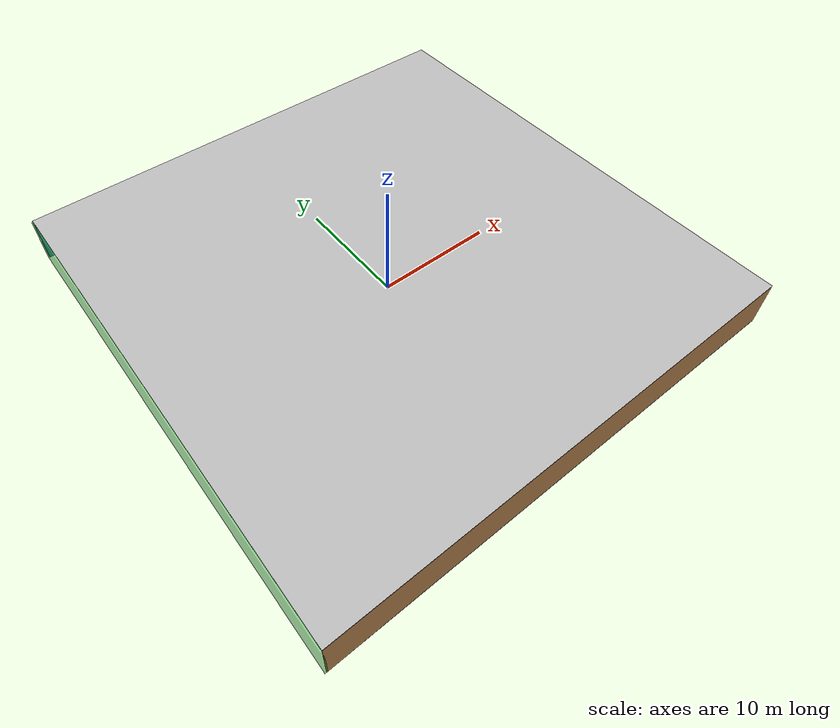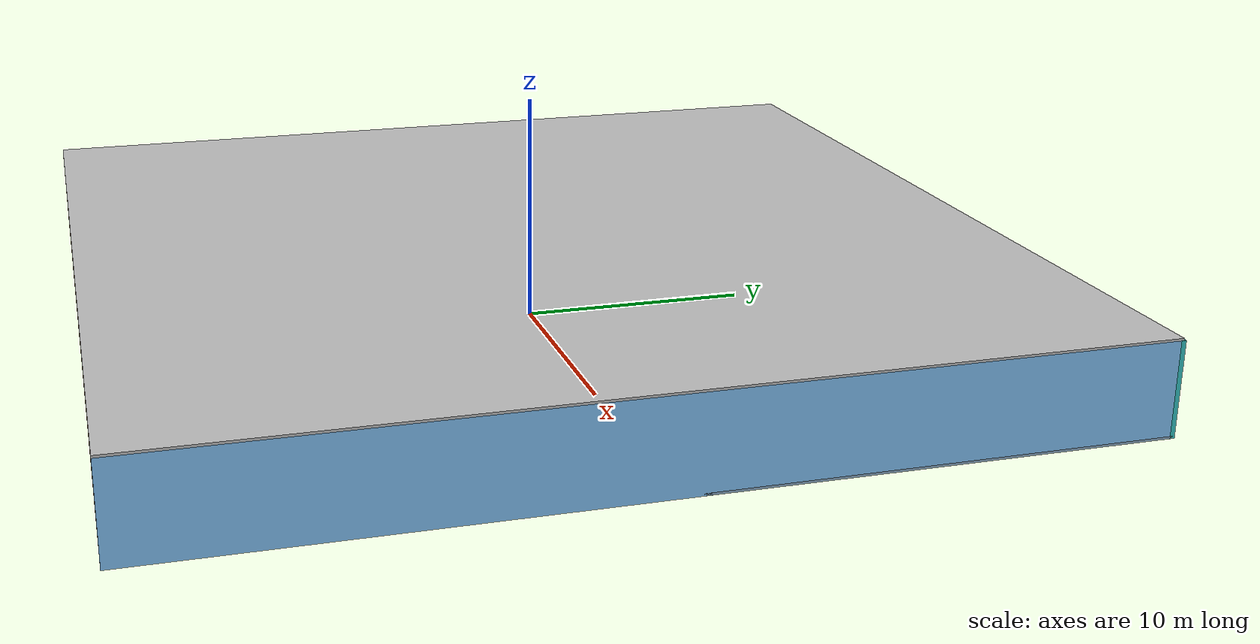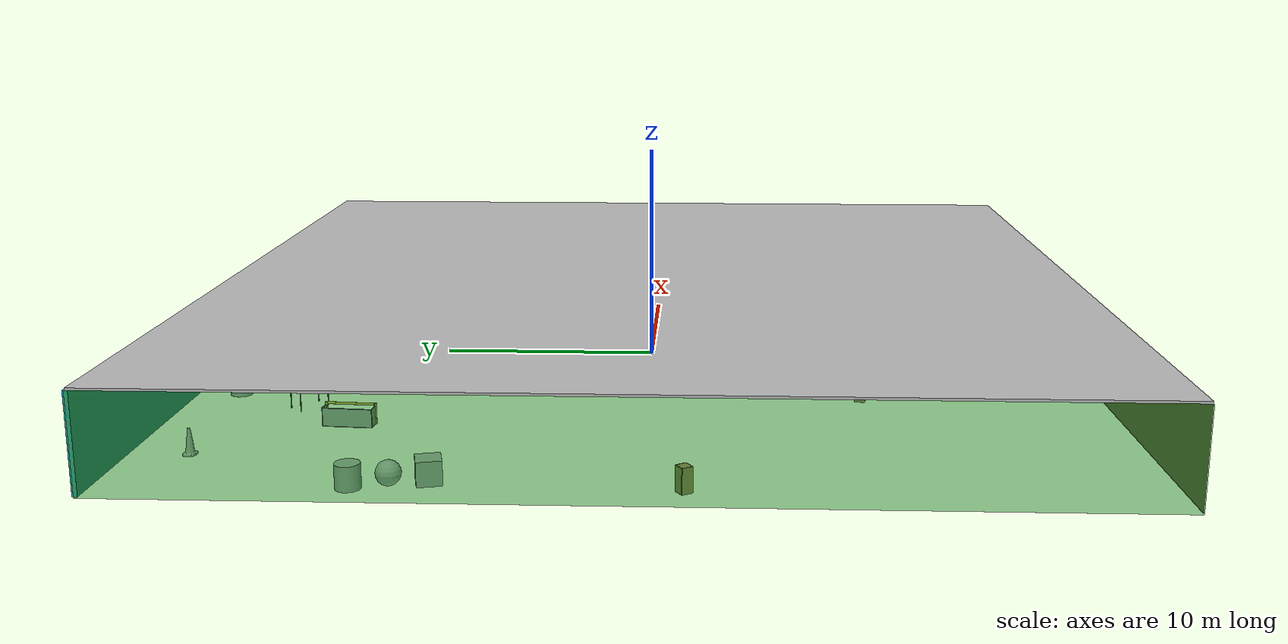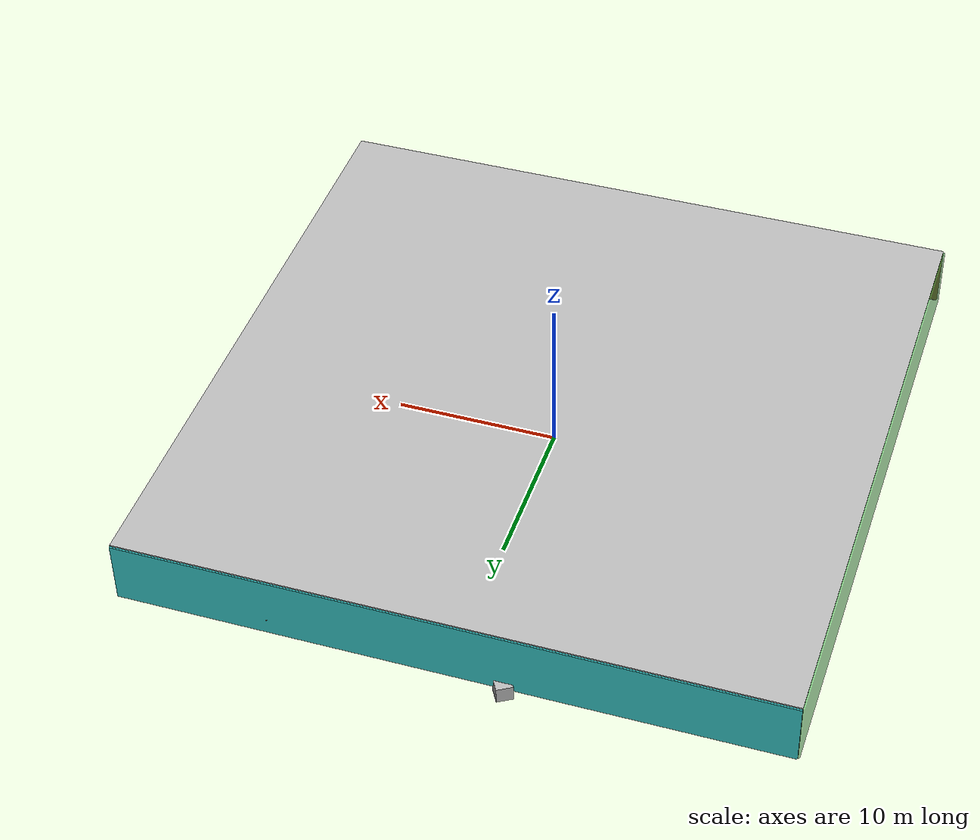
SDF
<sdf version="1.4">
 <world name="default">
  <physics type="ode">
   <max_step_size>0.001</max_step_size>
   <real_time_factor>1</real_time_factor>
   <real_time_update_rate>1000</real_time_update_rate>
   <gravity>0 0 -9.8</gravity>
  </physics>
  <scene><ambient>0.4 0.4 0.4 1</ambient><background>0.7 0.7 0.7 1</background><shadows>1</shadows></scene>
  <model name="Surrounding">
   <static>1</static>
   <link name="Ceiling">
    <collision name="Ceiling_Collision"><geometry><box><size>40 40 0.1</size></box></geometry></collision>
    <visual name="Ceiling_Visual">
     <geometry><box><size>40 40 0.1</size></box></geometry>
     <material>
      <script><uri>file://media/materials/scripts/gazebo.material</uri><name>Gazebo/PioneerBody</name></script>
     </material>
    </visual>
    <pose>0 0 4.05 0 0 0</pose>
   </link>
   <link name="Wall_South">
    <collision name="Wall_South_Collision">
     <geometry><box><size>40 0 4</size></box></geometry>
     <pose>0 0 2 0 -0 0</pose>
    </collision>
    <visual name="Wall_South_Visual">
     <pose>0 0 2 0 -0 0</pose>
     <geometry><box><size>40 0 4</size></box></geometry>
     <material>
      <script><uri>file://media/materials/scripts/gazebo.material</uri><name>Gazebo/WoodFloor</name></script>
     </material>
    </visual>
    <velocity_decay><linear>0</linear><angular>0</angular></velocity_decay>
    <pose>0 -20 0 0 -0 0</pose>
   </link>
   <link name="Wall_East">
    <collision name="Wall_21_Collision">
     <geometry><box><size>40 0 4</size></box></geometry>
     <pose>0 0 2 0 -0 0</pose>
    </collision>
    <visual name="Wall_21_Visual">
     <pose>0 0 2 0 -0 0</pose>
     <geometry><box><size>40 0 4</size></box></geometry>
     <material>
      <script><uri>file://media/materials/scripts/gazebo.material</uri><name>Gazebo/SkyBlue</name></script>
     </material>
    </visual>
    <velocity_decay><linear>0</linear><angular>0</angular></velocity_decay>
    <pose>20 0 0 0 -0 1.5708</pose>
   </link>
   <link name="Wall_North">
    <collision name="Wall_22_Collision">
     <geometry><box><size>40 0.2 4</size></box></geometry>
     <pose>0 0 2 0 -0 0</pose>
    </collision>
    <visual name="Wall_22_Visual">
     <pose>0 0 2 0 -0 0</pose>
     <geometry><box><size>40 0.2 4</size></box></geometry>
     <material>
      <script><uri>file://media/materials/scripts/gazebo.material</uri><name>Gazebo/Turquoise</name></script>
     </material>
    </visual>
    <velocity_decay><linear>0</linear><angular>0</angular></velocity_decay>
    <pose>0 20 0 0 -0 0</pose>
   </link>
   <link name="Wall_West">
    <collision name="Wall_23_Collision">
     <geometry><box><size>40 0.2 4</size></box></geometry>
     <pose>0 0 2 0 -0 0</pose>
    </collision>
    <visual name="Wall_23_Visual">
     <pose>0 0 2 0 -0 0</pose>
     <geometry><box><size>40 0.2 4</size></box></geometry>
     <material>
      <script><uri>file://media/materials/scripts/gazebo.material</uri><name>Gazebo/GreenTransparent</name></script>
     </material>
    </visual>
    <velocity_decay><linear>0</linear><angular>0</angular></velocity_decay>
    <pose>-20 0 0 0 0 -1.5708</pose>
   </link>
   <link name="Ground_link">
    <collision name="collision">
     <pose>0 0 .05 0 -0 0</pose>
     <geometry><box><size>40 40 0.1</size></box></geometry>
    </collision>
    <visual name="visual">
     <pose>0 0 .05 0 -0 0</pose>
     <geometry><box><size>40 40 0.1</size></box></geometry>
     <material>
      <script><uri>file://media/materials/scripts/gazebo.material</uri><name>Gazebo/GreyTransparent</name></script>
     </material>
    </visual>
   </link>
   <static>1</static>
  </model>
  <spherical_coordinates>
   <surface_model>EARTH_WGS84</surface_model>
   <latitude_deg>0</latitude_deg>
   <longitude_deg>0</longitude_deg>
   <elevation>0</elevation>
   <heading_deg>0</heading_deg>
  </spherical_coordinates>
  <light name="lightball_0" type="diffuse">
   <diffuse>0.8 0.8 0.8 1</diffuse>
   <specular>0.2 0.2 0.2 1</specular>
   <attenuation>
    <range>100</range>
    <constant>0.7</constant>
    <linear>0.01</linear>
    <quadratic>0.001</quadratic>
   </attenuation>
   <direction>-0.5 0.1 -0.9</direction>
   <pose>11.8497754501 10.9692036755 3.67579499752 0 0 0</pose>
  </light>
  <light name="lightball_1" type="diffuse">
   <diffuse>0.8 0.8 0.8 1</diffuse>
   <specular>0.2 0.2 0.2 1</specular>
   <attenuation>
    <range>100</range>
    <constant>0.7</constant>
    <linear>0.01</linear>
    <quadratic>0.001</quadratic>
   </attenuation>
   <direction>-0.5 0.1 -0.9</direction>
   <pose>-15.6833429527 -17.8022334767 1.38664090798 0 0 0</pose>
  </light>
  <light name="lightball_2" type="diffuse">
   <diffuse>0.8 0.8 0.8 1</diffuse>
   <specular>0.2 0.2 0.2 1</specular>
   <attenuation>
    <range>100</range>
    <constant>0.7</constant>
    <linear>0.01</linear>
    <quadratic>0.001</quadratic>
   </attenuation>
   <direction>-0.5 0.1 -0.9</direction>
   <pose>-4.82688349056 -6.77895929182 2.52652445977 0 0 0</pose>
  </light>
  <light name="lightball_3" type="diffuse">
   <diffuse>0.8 0.8 0.8 1</diffuse>
   <specular>0.2 0.2 0.2 1</specular>
   <attenuation>
    <range>100</range>
    <constant>0.7</constant>
    <linear>0.01</linear>
    <quadratic>0.001</quadratic>
   </attenuation>
   <direction>-0.5 0.1 -0.9</direction>
   <pose>3.18787112667 -13.4433692987 3.51062201771 0 0 0</pose>
  </light>
  <light name="lightball_4" type="diffuse">
   <diffuse>0.8 0.8 0.8 1</diffuse>
   <specular>0.2 0.2 0.2 1</specular>
   <attenuation>
    <range>100</range>
    <constant>0.7</constant>
    <linear>0.01</linear>
    <quadratic>0.001</quadratic>
   </attenuation>
   <direction>-0.5 0.1 -0.9</direction>
   <pose>-11.9630837625 -5.84949880833 2.82651709471 0 0 0</pose>
  </light>
  <light name="lightball_5" type="diffuse">
   <diffuse>0.8 0.8 0.8 1</diffuse>
   <specular>0.2 0.2 0.2 1</specular>
   <attenuation>
    <range>100</range>
    <constant>0.7</constant>
    <linear>0.01</linear>
    <quadratic>0.001</quadratic>
   </attenuation>
   <direction>-0.5 0.1 -0.9</direction>
   <pose>-15.4700495037 -0.0388465858255 2.86989349063 0 0 0</pose>
  </light>
  <light name="lightball_6" type="diffuse">
   <diffuse>0.8 0.8 0.8 1</diffuse>
   <specular>0.2 0.2 0.2 1</specular>
   <attenuation>
    <range>100</range>
    <constant>0.7</constant>
    <linear>0.01</linear>
    <quadratic>0.001</quadratic>
   </attenuation>
   <direction>-0.5 0.1 -0.9</direction>
   <pose>11.3473041042 -16.1481877358 2.86717240141 0 0 0</pose>
  </light>
  <light name="lightball_7" type="diffuse">
   <diffuse>0.8 0.8 0.8 1</diffuse>
   <specular>0.2 0.2 0.2 1</specular>
   <attenuation>
    <range>100</range>
    <constant>0.7</constant>
    <linear>0.01</linear>
    <quadratic>0.001</quadratic>
   </attenuation>
   <direction>-0.5 0.1 -0.9</direction>
   <pose>15.0304384557 -6.47443560863 0.650915017196 0 0 0</pose>
  </light>
  <light name="lightball_8" type="diffuse">
   <diffuse>0.8 0.8 0.8 1</diffuse>
   <specular>0.2 0.2 0.2 1</specular>
   <attenuation>
    <range>100</range>
    <constant>0.7</constant>
    <linear>0.01</linear>
    <quadratic>0.001</quadratic>
   </attenuation>
   <direction>-0.5 0.1 -0.9</direction>
   <pose>10.81821549 11.2107939609 2.04333825096 0 0 0</pose>
  </light>
  <light name="lightball_9" type="diffuse">
   <diffuse>0.8 0.8 0.8 1</diffuse>
   <specular>0.2 0.2 0.2 1</specular>
   <attenuation>
    <range>100</range>
    <constant>0.7</constant>
    <linear>0.01</linear>
    <quadratic>0.001</quadratic>
   </attenuation>
   <direction>-0.5 0.1 -0.9</direction>
   <pose>-19.8957104406 5.22988693846 3.04377079907 0 0 0</pose>
  </light>
  <light name="lightball_10" type="diffuse">
   <diffuse>0.8 0.8 0.8 1</diffuse>
   <specular>0.2 0.2 0.2 1</specular>
   <attenuation>
    <range>100</range>
    <constant>0.7</constant>
    <linear>0.01</linear>
    <quadratic>0.001</quadratic>
   </attenuation>
   <direction>-0.5 0.1 -0.9</direction>
   <pose>18.8923037826 -15.6763563167 3.26283269684 0 0 0</pose>
  </light>
  <light name="lightball_11" type="diffuse">
   <diffuse>0.8 0.8 0.8 1</diffuse>
   <specular>0.2 0.2 0.2 1</specular>
   <attenuation>
    <range>100</range>
    <constant>0.7</constant>
    <linear>0.01</linear>
    <quadratic>0.001</quadratic>
   </attenuation>
   <direction>-0.5 0.1 -0.9</direction>
   <pose>5.98792995643 15.5101842896 1.00149282089 0 0 0</pose>
  </light>
  <light name="lightball_12" type="diffuse">
   <diffuse>0.8 0.8 0.8 1</diffuse>
   <specular>0.2 0.2 0.2 1</specular>
   <attenuation>
    <range>100</range>
    <constant>0.7</constant>
    <linear>0.01</linear>
    <quadratic>0.001</quadratic>
   </attenuation>
   <direction>-0.5 0.1 -0.9</direction>
   <pose>-3.85119992642 -9.81891148958 1.55426278476 0 0 0</pose>
  </light>
  <light name="lightball_13" type="diffuse">
   <diffuse>0.8 0.8 0.8 1</diffuse>
   <specular>0.2 0.2 0.2 1</specular>
   <attenuation>
    <range>100</range>
    <constant>0.7</constant>
    <linear>0.01</linear>
    <quadratic>0.001</quadratic>
   </attenuation>
   <direction>-0.5 0.1 -0.9</direction>
   <pose>8.4120242625 -4.61116446511 1.49657942458 0 0 0</pose>
  </light>
  <include><uri>model://cabinet</uri><pose>-18.6449704236 -1.87612259292 0 0 0 2.10841730458</pose></include>
  <include>
   <uri>model://textured_shapes</uri>
   <pose>-17.0730686026 9.29466004164 0 0 0 0.238345341786</pose>
  </include>
  <include>
   <uri>model://construction_cone</uri>
   <pose>-15.3718254357 17.4546140171 0 0 0 3.0683255496</pose>
  </include>
  <include>
   <uri>model://robocup_3Dsim_goal</uri>
   <pose>-11.288151707 12.115120764 0 0 0 3.06120026691</pose>
  </include>
  <include><uri>model://cabinet</uri><pose>-7.38429592144 -9.40778727144 0 0 0 1.36897897459</pose></include>
  <include><uri>model://table</uri><pose>-9.15715336402 14.4549877306 0 0 0 2.40167954093</pose></include>
  <include>
   <uri>model://textured_shapes</uri>
   <pose>-4.58496712415 19.2894342574 0 0 0 2.10668290803</pose>
  </include>
  <include><uri>model://cabinet</uri><pose>-2.55723589992 -16.9399289192 0 0 0 0.806372863794</pose></include>
  <include><uri>model://cabinet</uri><pose>-1.63974559405 2.50829826033 0 0 0 3.04965748999</pose></include>
  <include>
   <uri>model://construction_cone</uri>
   <pose>1.50046164273 -14.2603666164 0 0 0 2.94817972798</pose>
  </include>
  <include><uri>model://table</uri><pose>-0.613244237692 4.02955463173 0 0 0 1.22652769496</pose></include>
  <include><uri>model://cabinet</uri><pose>0.0413252133486 10.6020001848 0 0 0 2.43805677988</pose></include>
  <include><uri>model://table</uri><pose>3.37329829443 18.4530188223 0 0 0 0.189311250323</pose></include>
  <include><uri>model://cabinet</uri><pose>5.82653116513 -8.43921638471 0 0 0 1.85682609649</pose></include>
  <include><uri>model://cabinet</uri><pose>9.43226875434 4.45177620699 0 0 0 1.69087882363</pose></include>
  <include><uri>model://cabinet</uri><pose>8.57633794396 15.662903461 0 0 0 2.57182240115</pose></include>
  <include><uri>model://table</uri><pose>10.3067455054 19.3919529167 0 0 0 0.570312980403</pose></include>
  <include><uri>model://cabinet</uri><pose>15.9467229142 3.0115680491 0 0 0 1.18782083674</pose></include>
  <include><uri>model://cabinet</uri><pose>17.640594387 -18.1015986031 0 0 0 2.13054154437</pose></include>
  <include>
   <uri>model://robocup_3Dsim_goal</uri>
   <pose>18.4781913998 -11.9831761557 0 0 0 0.234476985634</pose>
  </include>
 </world>
</sdf>

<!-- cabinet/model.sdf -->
<sdf version="1.5">
  <model name="cabinet">
    <static>true</static>
    <link name="cabinet_bottom_plate">
      <inertial>
        <pose>0 0 -1 0 0 0</pose>
        <inertia>
          <ixx>2.050000</ixx>
          <ixy>0</ixy>
          <ixz>0</ixz>
          <iyy>2.050000</iyy>
          <iyz>0</iyz>
          <izz>2.050000</izz>
        </inertia>
        <mass>25.000000</mass>
      </inertial>
      <collision name="cabinet_bottom_plate_geom">
        <pose>0 0 0.010000 0 0 0</pose>
        <geometry>
          <box>
            <size>0.450000 0.450000 0.020000</size>
          </box>
        </geometry>
      </collision>
      <visual name="cabinet_bottom_plate_geom_visual">
        <pose>0 0 0.010000 0 0 0</pose>
        <geometry>
          <box>
            <size>0.450000 0.450000 0.020000</size>
          </box>
        </geometry>
        <material>
          <script>
            <uri>model://media/materials/scripts/gazebo.material</uri>
            <name>Gazebo/Wood</name>
          </script>
        </material>
      </visual>
      <collision name="cabinet_bottom_plate_geom_cabinet_back_plate">
        <pose>0.235000 0 0.510000 0 0 0</pose>
        <geometry>
          <box>
            <size>0.020000 0.450000 1.020000</size>
          </box>
        </geometry>
      </collision>
      <visual name="cabinet_bottom_plate_geom_cabinet_back_plate_visual">
        <pose>0.235000 0 0.510000 0 0 0</pose>
        <geometry>
          <box>
            <size>0.020000 0.450000 1.020000</size>
          </box>
        </geometry>
        <material>
          <script>
            <uri>model://media/materials/scripts/gazebo.material</uri>
            <name>Gazebo/Wood</name>
          </script>
        </material>
      </visual>
      <collision name="cabinet_bottom_plate_geom_cabinet_left_plate">
        <pose>0 0.235000 0.510000 0 0 0</pose>
        <geometry>
          <box>
            <size>0.450000 0.020000 1.020000</size>
          </box>
        </geometry>
      </collision>
      <visual name="cabinet_bottom_plate_geom_cabinet_left_plate_visual">
        <pose>0 0.235000 0.510000 0 0 0</pose>
        <geometry>
          <box>
            <size>0.450000 0.020000 1.020000</size>
          </box>
        </geometry>
        <material>
          <script>
            <uri>model://media/materials/scripts/gazebo.material</uri>
            <name>Gazebo/Wood</name>
          </script>
        </material>
      </visual>
      <collision name="cabinet_bottom_plate_geom_cabinet_middle_plate">
        <pose>0 0 0.510000 0 0 0</pose>
        <geometry>
          <box>
            <size>0.450000 0.450000 0.020000</size>
          </box>
        </geometry>
      </collision>
      <visual name="cabinet_bottom_plate_geom_cabinet_middle_plate_visual">
        <pose>0 0 0.510000 0 0 0</pose>
        <geometry>
          <box>
            <size>0.450000 0.450000 0.020000</size>
          </box>
        </geometry>
        <material>
          <script>
            <uri>model://media/materials/scripts/gazebo.material</uri>
            <name>Gazebo/Wood</name>
          </script>
        </material>
      </visual>
      <collision name="cabinet_bottom_plate_geom_cabinet_right_plate">
        <pose>0 -0.235000 0.510000 0 0 0</pose>
        <geometry>
          <box>
            <size>0.450000 0.020000 1.020000</size>
          </box>
        </geometry>
      </collision>
      <visual name="cabinet_bottom_plate_geom_cabinet_right_plate_visual">
        <pose>0 -0.235000 0.510000 0 0 0</pose>
        <geometry>
          <box>
            <size>0.450000 0.020000 1.020000</size>
          </box>
        </geometry>
        <material>
          <script>
            <uri>model://media/materials/scripts/gazebo.material</uri>
            <name>Gazebo/Wood</name>
          </script>
        </material>
      </visual>
      <collision name="cabinet_bottom_plate_geom_cabinet_top_plate">
        <pose>0 0 1.010000 0 0 0</pose>
        <geometry>
          <box>
            <size>0.450000 0.450000 0.020000</size>
          </box>
        </geometry>
      </collision>
      <visual name="cabinet_bottom_plate_geom_cabinet_top_plate_visual">
        <pose>0 0 1.010000 0 0 0</pose>
        <geometry>
          <box>
            <size>0.450000 0.450000 0.020000</size>
          </box>
        </geometry>
        <material>
          <script>
            <uri>model://media/materials/scripts/gazebo.material</uri>
            <name>Gazebo/Wood</name>
          </script>
        </material>
      </visual>
    </link>
  </model>
</sdf>

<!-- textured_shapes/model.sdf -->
<sdf version="1.6">
  <model name="textured_shapes">
    <pose>0 0 0.5 0 0 0</pose>
    <link name="box">
      <pose>0 -1.5 0 0 0 0</pose>
      <collision name="collision">
        <geometry>
          <box>
            <size>1 1 1</size>
          </box>
        </geometry>
      </collision>
      <visual name="visual">
        <geometry>
          <box>
            <size>1 1 1</size>
          </box>
        </geometry>
        <material>
          <script>
            <uri>model://../model_source/models/textured_shapes/materials/scripts</uri>
            <uri>model://../model_source/models/textured_shapes/materials/textures</uri>
            <name>TexturedShape/Squares</name>
          </script>
        </material>
      </visual>
    </link>
    <link name="sphere">
      <collision name="collision">
        <geometry>
          <sphere>
            <radius>0.5</radius>
          </sphere>
        </geometry>
      </collision>
      <visual name="visual">
        <geometry>
          <sphere>
            <radius>0.5</radius>
          </sphere>
        </geometry>
        <material>
          <script>
            <uri>model://../model_source/models/textured_shapes/materials/scripts</uri>
            <uri>model://../model_source/models/textured_shapes/materials/textures</uri>
            <name>TexturedShape/Squares</name>
          </script>
        </material>
      </visual>
    </link>
    <link name="cylinder">
      <pose>0 1.5 0 0 0 0</pose>
      <collision name="collision">
        <geometry>
          <cylinder>
            <radius>0.5</radius>
            <length>1</length>
          </cylinder>
        </geometry>
      </collision>
      <visual name="visual">
        <geometry>
          <cylinder>
            <radius>0.5</radius>
            <length>1</length>
          </cylinder>
        </geometry>
        <material>
          <script>
            <uri>model://../model_source/models/textured_shapes/materials/scripts</uri>
            <uri>model://../model_source/models/textured_shapes/materials/textures</uri>
            <name>TexturedShape/Squares</name>
          </script>
        </material>
      </visual>
    </link>
  </model>
</sdf>

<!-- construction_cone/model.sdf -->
<sdf version="1.5">
  <model name="Construction Cone">
    <link name="link">
      <collision name="collision">
        <geometry>
          <mesh>
            <scale>10 10 10</scale>
            <uri>file://isr-testbed/construction_cone/meshes/construction_cone.dae</uri>
          </mesh>
        </geometry>
      </collision>
      <visual name="visual">
        <geometry>
          <mesh>
            <scale>10 10 10</scale>
            <uri>file://isr-testbed/construction_cone/meshes/construction_cone.dae</uri>
          </mesh>
        </geometry>
      </visual>
    </link>
  </model>
</sdf>

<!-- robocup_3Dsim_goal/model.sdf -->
<sdf version="1.5">
  <model name="robocup_3d_goal">
    <static>true</static>
    <link name="left_post">
      <pose>0 1.05 0.45 0 0 0</pose>
      <collision name="collision">
        <geometry>
          <cylinder>
            <radius>0.05</radius>
            <length>0.9</length>
          </cylinder>
        </geometry>
      </collision>
      <visual name="visual">
        <geometry>
          <cylinder>
            <radius>0.05</radius>
            <length>0.9</length>
          </cylinder>
        </geometry>
        <material>
          <script>
            <uri>file://media/materials/scripts/gazebo.material</uri>
            <name>Gazebo/ZincYellow</name>
          </script>
        </material>
      </visual>
    </link>
    <link name="left_support_horiz_lower">
      <pose>0.30 1.05 0.01 0 0 0</pose>
      <collision name="collision">
        <geometry>
          <box>
            <size>0.50 0.02 0.02</size>
          </box>
        </geometry>
      </collision>
      <visual name="visual">
        <geometry>
          <box>
            <size>0.50 0.02 0.02</size>
          </box>
        </geometry>
        <material>
          <script>
            <uri>file://media/materials/scripts/gazebo.material</uri>
            <name>Gazebo/White</name>
          </script>
        </material>
      </visual>
    </link>
    <link name="left_support_horiz_upper">
      <pose>0.30 1.05 0.79 0 0 0</pose>
      <collision name="collision">
        <geometry>
          <box>
            <size>0.50 0.02 0.02</size>
          </box>
        </geometry>
      </collision>
      <visual name="visual">
        <geometry>
          <box>
            <size>0.50 0.02 0.02</size>
          </box>
        </geometry>
        <material>
          <script>
            <uri>file://media/materials/scripts/gazebo.material</uri>
            <name>Gazebo/White</name>
          </script>
        </material>
      </visual>
    </link>
    <link name="left_support_vertical">
      <pose>0.56 1.05 0.4 0 1.5708 0</pose>
      <collision name="collision">
        <geometry>
          <box>
            <size>0.80 0.02 0.02</size>
          </box>
        </geometry>
      </collision>
      <visual name="visual">
        <geometry>
          <box>
            <size>0.80 0.02 0.02</size>
          </box>
        </geometry>
        <material>
          <script>
            <uri>file://media/materials/scripts/gazebo.material</uri>
            <name>Gazebo/White</name>
          </script>
        </material>
      </visual>
    </link>
    <link name="right_support_horiz_lower">
      <pose>0.30 -1.05 0.01 0 0 0</pose>
      <collision name="collision">
        <geometry>
          <box>
            <size>0.50 0.02 0.02</size>
          </box>
        </geometry>
      </collision>
      <visual name="visual">
        <geometry>
          <box>
            <size>0.50 0.02 0.02</size>
          </box>
        </geometry>
        <material>
          <script>
            <uri>file://media/materials/scripts/gazebo.material</uri>
            <name>Gazebo/White</name>
          </script>
        </material>
      </visual>
    </link>
    <link name="right_support_horiz_upper">
      <pose>0.30 -1.05 0.79 0 0 0</pose>
      <collision name="collision">
        <geometry>
          <box>
            <size>0.50 0.02 0.02</size>
          </box>
        </geometry>
      </collision>
      <visual name="visual">
        <geometry>
          <box>
            <size>0.50 0.02 0.02</size>
          </box>
        </geometry>
        <material>
          <script>
            <uri>file://media/materials/scripts/gazebo.material</uri>
            <name>Gazebo/White</name>
          </script>
        </material>
      </visual>
    </link>
    <link name="right_support_vertical">
      <pose>0.56 -1.05 0.4 0 1.5708 0</pose>
      <collision name="collision">
        <geometry>
          <box>
            <size>0.80 0.02 0.02</size>
          </box>
        </geometry>
      </collision>
      <visual name="visual">
        <geometry>
          <box>
            <size>0.80 0.02 0.02</size>
          </box>
        </geometry>
        <material>
          <script>
            <uri>file://media/materials/scripts/gazebo.material</uri>
            <name>Gazebo/White</name>
          </script>
        </material>
      </visual>
    </link>
    <link name="center_support_horiz_lower">
      <pose>0.56 0 0.01 0 1.5708 0</pose>
      <collision name="collision">
        <geometry>
          <box>
            <size>0.02 2.08 0.02</size>
          </box>
        </geometry>
      </collision>
      <visual name="visual">
        <geometry>
          <box>
            <size>0.02 2.08 0.02</size>
          </box>
        </geometry>
        <material>
          <script>
            <uri>file://media/materials/scripts/gazebo.material</uri>
            <name>Gazebo/White</name>
          </script>
        </material>
      </visual>
    </link>
    <link name="center_support_horiz_upper">
      <pose>0.56 0 0.79 0 1.5708 0</pose>
      <collision name="collision">
        <geometry>
          <box>
            <size>0.02 2.08 0.02</size>
          </box>
        </geometry>
      </collision>
      <visual name="visual">
        <geometry>
          <box>
            <size>0.02 2.08 0.02</size>
          </box>
        </geometry>
        <material>
          <script>
            <uri>file://media/materials/scripts/gazebo.material</uri>
            <name>Gazebo/White</name>
          </script>
        </material>
      </visual>
    </link>
    <link name="right_post">
      <pose>0 -1.05 0.45 0 0 0</pose>
      <collision name="collision">
        <geometry>
          <cylinder>
            <radius>0.05</radius>
            <length>0.9</length>
          </cylinder>
        </geometry>
      </collision>
      <visual name="visual">
        <geometry>
          <cylinder>
            <radius>0.05</radius>
            <length>0.9</length>
          </cylinder>
        </geometry>
        <material>
          <script>
            <uri>file://media/materials/scripts/gazebo.material</uri>
            <name>Gazebo/ZincYellow</name>
          </script>
        </material>
      </visual>
    </link>
    <link name="crossbar">
      <pose>0 0 0.85 1.57 1.57 0</pose>
      <collision name="collision">
        <geometry>
          <cylinder>
            <radius>0.05</radius>
            <length>2.0</length>
          </cylinder>
        </geometry>
      </collision>
      <visual name="visual">
        <geometry>
          <cylinder>
            <radius>0.05</radius>
            <length>2.0</length>
          </cylinder>
        </geometry>
        <material>
          <script>
            <uri>file://media/materials/scripts/gazebo.material</uri>
            <name>Gazebo/ZincYellow</name>
          </script>
        </material>
      </visual>
    </link>
    <link name="center_net">
      <pose>0.56 0 0.40 0 0 0</pose>
      <collision name="collision">
        <geometry>
          <box>
            <size>0.01 2.1 0.80</size>
          </box>
        </geometry>
      </collision>
      <visual name="visual">
        <geometry>
          <box>
            <size>0.01 2.1 0.80</size>
          </box>
        </geometry>
        <material>
          <script>
            <uri>model://../model_source/models/robocup09_spl_field/materials/scripts/</uri>
            <uri>model://../model_source/models/robocup09_spl_field/materials/textures/</uri>
            <name>RoboCup/Net</name>
          </script>
        </material>
      </visual>
    </link>
    <link name="left_net">
      <pose>0.30 1.05 0.40 0 0 0</pose>
      <collision name="collision">
        <geometry>
          <box>
            <size>0.50 0.01 0.76</size>
          </box>
        </geometry>
      </collision>
      <visual name="visual">
        <geometry>
          <box>
            <size>0.50 0.01 0.76</size>
          </box>
        </geometry>
        <material>
          <script>
            <uri>model://../model_source/models/robocup09_spl_field/materials/scripts/</uri>
            <uri>model://../model_source/models/robocup09_spl_field/materials/textures/</uri>
            <name>RoboCup/Net</name>
          </script>
        </material>
      </visual>
    </link>
    <link name="right_net">
      <pose>0.30 -1.05 0.40 0 0 0</pose>
      <collision name="collision">
        <geometry>
          <box>
            <size>0.50 0.01 0.76</size>
          </box>
        </geometry>
      </collision>
      <visual name="visual">
        <geometry>
          <box>
            <size>0.50 0.01 0.76</size>
          </box>
        </geometry>
        <material>
          <script>
            <uri>model://../model_source/models/robocup09_spl_field/materials/scripts/</uri>
            <uri>model://../model_source/models/robocup09_spl_field/materials/textures/</uri>
            <name>RoboCup/Net</name>
          </script>
        </material>
      </visual>
    </link>
  </model>
</sdf>

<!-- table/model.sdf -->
<sdf version="1.5">
  <model name="table">
    <static>true</static>
    <link name="link">
      <collision name="surface">
        <pose>0 0 1.0 0 0 0</pose>
        <geometry>
          <box>
            <size>1.5 0.8 0.03</size>
          </box>
        </geometry>
        <surface>
          <friction>
            <ode>
              <mu>0.6</mu>
              <mu2>0.6</mu2>
            </ode>
          </friction>
        </surface>
      </collision>
      <visual name="visual1">
        <pose>0 0 1.0 0 0 0</pose>
        <geometry>
          <box>
            <size>1.5 0.8 0.03</size>
          </box>
        </geometry>
        <material>
          <script>
            <uri>model://media/materials/scripts/gazebo.material</uri>
            <name>Gazebo/Wood</name>
          </script>
        </material>
      </visual>
      <collision name="front_left_leg">
        <pose>0.68 0.38 0.5 0 0 0</pose>
        <geometry>
          <cylinder>
            <radius>0.02</radius>
            <length>1.0</length>
          </cylinder>
        </geometry>
      </collision>
      <visual name="front_left_leg">
        <pose>0.68 0.38 0.5 0 0 0</pose>
        <geometry>
          <cylinder>
            <radius>0.02</radius>
            <length>1.0</length>
          </cylinder>
        </geometry>
        <material>
          <script>
            <uri>model://media/materials/scripts/gazebo.material</uri>
            <name>Gazebo/Grey</name>
          </script>
        </material>
      </visual>
      <collision name="front_right_leg">
        <pose>0.68 -0.38 0.5 0 0 0</pose>
        <geometry>
          <cylinder>
            <radius>0.02</radius>
            <length>1.0</length>
          </cylinder>
        </geometry>
      </collision>
      <visual name="front_right_leg">
        <pose>0.68 -0.38 0.5 0 0 0</pose>
        <geometry>
          <cylinder>
            <radius>0.02</radius>
            <length>1.0</length>
          </cylinder>
        </geometry>
        <material>
          <script>
            <uri>model://media/materials/scripts/gazebo.material</uri>
            <name>Gazebo/Grey</name>
          </script>
        </material>
      </visual>
      <collision name="back_right_leg">
        <pose>-0.68 -0.38 0.5 0 0 0</pose>
        <geometry>
          <cylinder>
            <radius>0.02</radius>
            <length>1.0</length>
          </cylinder>
        </geometry>
      </collision>
      <visual name="back_right_leg">
        <pose>-0.68 -0.38 0.5 0 0 0</pose>
        <geometry>
          <cylinder>
            <radius>0.02</radius>
            <length>1.0</length>
          </cylinder>
        </geometry>
        <material>
          <script>
            <uri>model://media/materials/scripts/gazebo.material</uri>
            <name>Gazebo/Grey</name>
          </script>
        </material>
      </visual>
      <collision name="back_left_leg">
        <pose>-0.68 0.38 0.5 0 0 0</pose>
        <geometry>
          <cylinder>
            <radius>0.02</radius>
            <length>1.0</length>
          </cylinder>
        </geometry>
      </collision>
      <visual name="back_left_leg">
        <pose>-0.68 0.38 0.5 0 0 0</pose>
        <geometry>
          <cylinder>
            <radius>0.02</radius>
            <length>1.0</length>
          </cylinder>
        </geometry>
        <material>
          <script>
            <uri>model://media/materials/scripts/gazebo.material</uri>
            <name>Gazebo/Grey</name>
          </script>
        </material>
      </visual>
    </link>
  </model>
</sdf>
